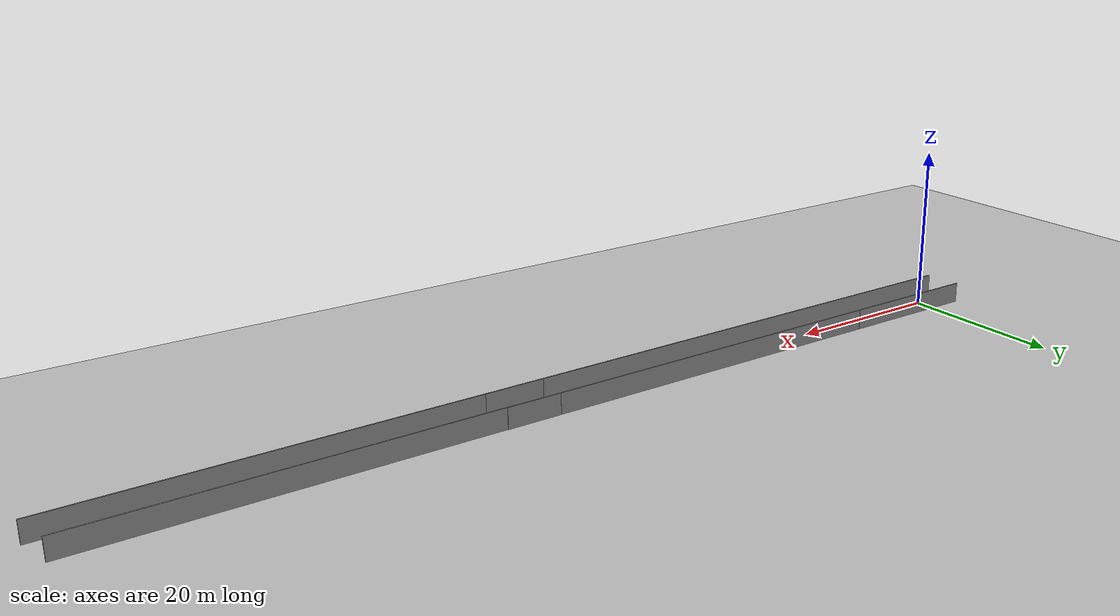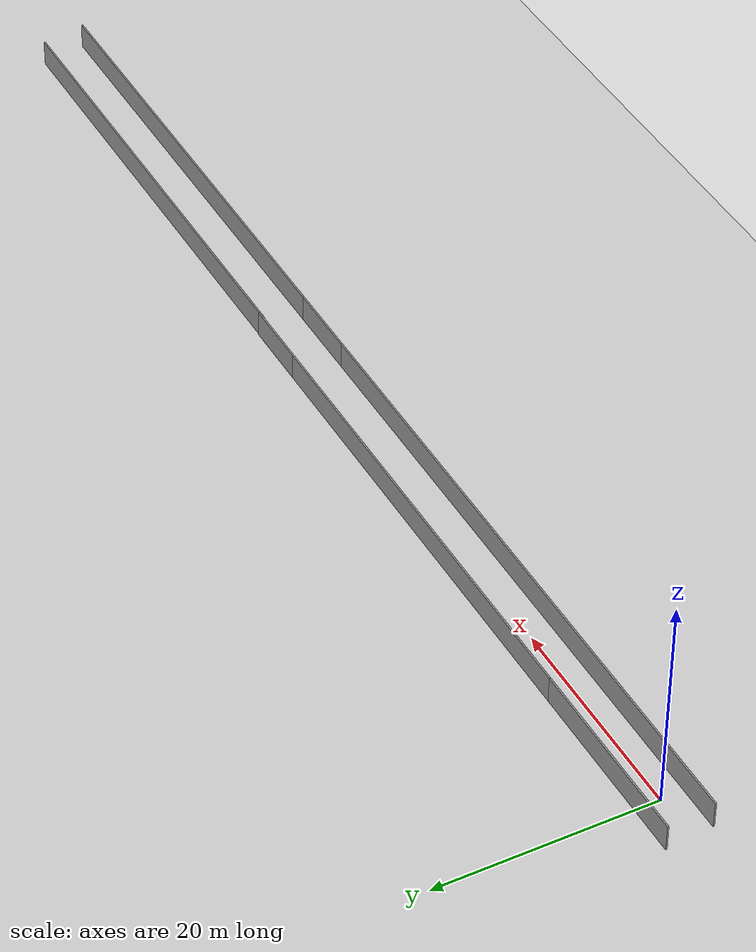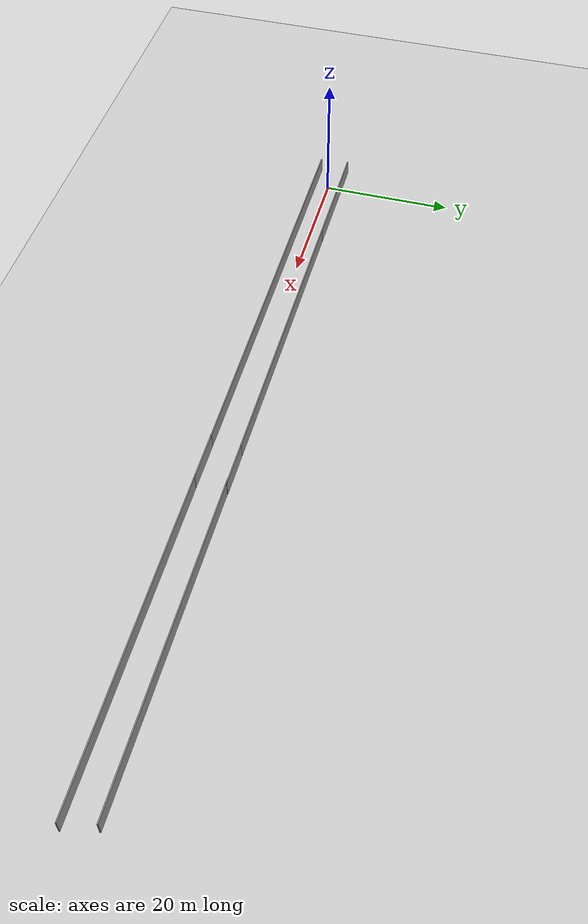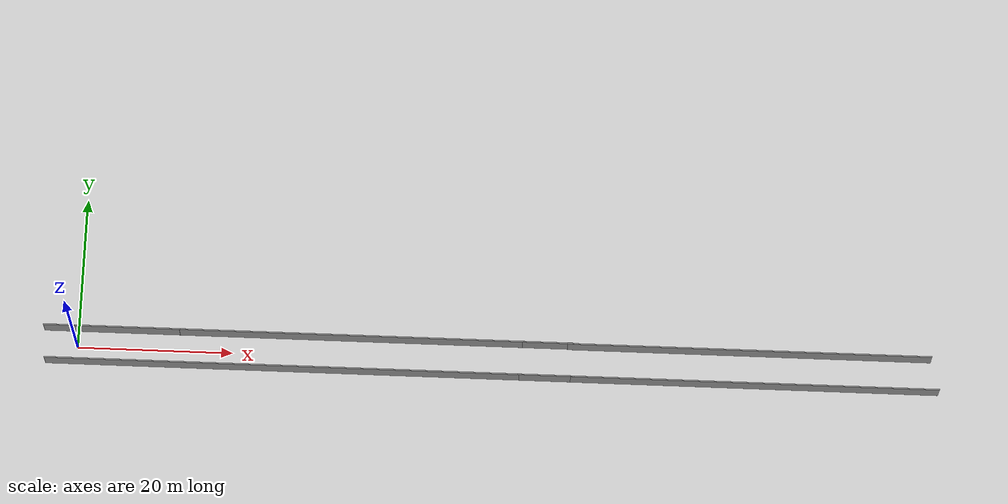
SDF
<sdf version="1.7">
 <world name="default">
  <light name="sun" type="directional">
   <pose>0 0 10 0 -0 0</pose>
   <diffuse>0.8 0.8 0.8 1</diffuse>
   <specular>0.2 0.2 0.2 1</specular>
   <attenuation>
    <range>1000</range>
    <constant>0.9</constant>
    <linear>0.01</linear>
    <quadratic>0.001</quadratic>
   </attenuation>
   <direction>-0.5 0.1 -0.9</direction>
   <spot><inner_angle>0</inner_angle><outer_angle>0</outer_angle><falloff>0</falloff></spot>
  </light>
  <model name="ground_plane">
   <static>1</static>
   <link name="link">
    <collision name="collision">
     <geometry><plane><normal>0 0 1</normal><size>100 100</size></plane></geometry>
     <surface>
      <contact><collide_bitmask>65535</collide_bitmask></contact>
      <friction><ode><mu>100</mu><mu2>50</mu2></ode></friction>
     </surface>
    </collision>
    <visual name="visual">
     <cast_shadows>0</cast_shadows>
     <geometry><plane><normal>0 0 1</normal><size>100 100</size></plane></geometry>
     <material>
      <script><uri>file://media/materials/scripts/gazebo.material</uri><name>Gazebo/Grey</name></script>
     </material>
    </visual>
   </link>
  </model>
  <gravity>0 0 -9.8</gravity>
  <magnetic_field>6e-06 2.3e-05 -4.2e-05</magnetic_field>
  <atmosphere type="adiabatic"/>
  <physics type="ode">
   <max_step_size>0.001</max_step_size>
   <real_time_factor>1</real_time_factor>
   <real_time_update_rate>1000</real_time_update_rate>
  </physics>
  <scene><ambient>0.4 0.4 0.4 1</ambient><background>0.7 0.7 0.7 1</background><shadows>1</shadows></scene>
  <spherical_coordinates>
   <surface_model>EARTH_WGS84</surface_model>
   <latitude_deg>0</latitude_deg>
   <longitude_deg>0</longitude_deg>
   <elevation>0</elevation>
   <heading_deg>0</heading_deg>
  </spherical_coordinates>
  <model name="tunnel">
   <pose>53.3986 0.105549 -0 0 0 -1.57</pose>
   <link name="Wall_1">
    <collision name="Wall_1_Collision">
     <geometry><box><size>44.5 0.15 2.5</size></box></geometry>
     <pose>0 0 1.25 0 -0 0</pose>
    </collision>
    <visual name="Wall_1_Visual">
     <pose>0 0 1.25 0 -0 0</pose>
     <geometry><box><size>44.5 0.15 2.5</size></box></geometry>
     <material>
      <script><uri>file://media/materials/scripts/gazebo.material</uri><name>Gazebo/Grey</name></script>
      <ambient>1 1 1 1</ambient>
     </material>
     <meta><layer>0</layer></meta>
    </visual>
    <pose>-2.20564 -18.0387 0 0 -0 1.5708</pose>
   </link>
   <link name="Wall_13">
    <collision name="Wall_13_Collision">
     <geometry><box><size>61.25 0.15 2.5</size></box></geometry>
     <pose>0 0 1.25 0 -0 0</pose>
    </collision>
    <visual name="Wall_13_Visual">
     <pose>0 0 1.25 0 -0 0</pose>
     <geometry><box><size>61.25 0.15 2.5</size></box></geometry>
     <material>
      <script><uri>file://media/materials/scripts/gazebo.material</uri><name>Gazebo/Grey</name></script>
      <ambient>1 1 1 1</ambient>
     </material>
     <meta><layer>0</layer></meta>
    </visual>
    <pose>2.20241 -26.8761 0 0 -0 -1.5708</pose>
   </link>
   <link name="Wall_16">
    <collision name="Wall_16_Collision">
     <geometry><box><size>7.25 0.15 2.5</size></box></geometry>
     <pose>0 0 1.25 0 -0 0</pose>
    </collision>
    <visual name="Wall_16_Visual">
     <pose>0 0 1.25 0 -0 0</pose>
     <geometry><box><size>7.25 0.15 2.5</size></box></geometry>
     <material>
      <script><uri>file://media/materials/scripts/gazebo.material</uri><name>Gazebo/Grey</name></script>
      <ambient>1 1 1 1</ambient>
     </material>
     <meta><layer>0</layer></meta>
    </visual>
    <pose>2.20241 7.22386 0 0 -0 1.5708</pose>
   </link>
   <link name="Wall_18">
    <collision name="Wall_18_Collision">
     <geometry><box><size>6.75 0.15 2.5</size></box></geometry>
     <pose>0 0 1.25 0 -0 0</pose>
    </collision>
    <visual name="Wall_18_Visual">
     <pose>0 0 1.25 0 -0 0</pose>
     <geometry><box><size>6.75 0.15 2.5</size></box></geometry>
     <material>
      <script><uri>file://media/materials/scripts/gazebo.material</uri><name>Gazebo/Grey</name></script>
      <ambient>1 1 1 1</ambient>
     </material>
     <meta><layer>0</layer></meta>
    </visual>
    <pose>-2.20564 7.4363 0 0 -0 1.5708</pose>
   </link>
   <link name="Wall_24">
    <collision name="Wall_24_Collision">
     <geometry><box><size>47.5 0.15 2.5</size></box></geometry>
     <pose>0 0 1.25 0 -0 0</pose>
    </collision>
    <visual name="Wall_24_Visual">
     <pose>0 0 1.25 0 -0 0</pose>
     <geometry><box><size>47.5 0.15 2.5</size></box></geometry>
     <material>
      <script><uri>file://media/materials/scripts/gazebo.material</uri><name>Gazebo/Grey</name></script>
      <ambient>1 1 1 1</ambient>
     </material>
     <meta><layer>0</layer></meta>
    </visual>
    <pose>2.20564 34.1387 0 0 -0 1.5708</pose>
   </link>
   <link name="Wall_37">
    <collision name="Wall_37_Collision">
     <geometry><box><size>47 0.15 2.5</size></box></geometry>
     <pose>0 0 1.25 0 -0 0</pose>
    </collision>
    <visual name="Wall_37_Visual">
     <pose>0 0 1.25 0 -0 0</pose>
     <geometry><box><size>47 0.15 2.5</size></box></geometry>
     <material>
      <script><uri>file://media/materials/scripts/gazebo.material</uri><name>Gazebo/Grey</name></script>
      <ambient>1 1 1 1</ambient>
     </material>
     <meta><layer>0</layer></meta>
    </visual>
    <pose>-2.15324 33.3859 0 0 -0 1.5708</pose>
   </link>
   <link name="Wall_4">
    <collision name="Wall_4_Collision">
     <geometry><box><size>17.75 0.15 2.5</size></box></geometry>
     <pose>0 0 1.25 0 -0 0</pose>
    </collision>
    <visual name="Wall_4_Visual">
     <pose>0 0 1.25 0 -0 0</pose>
     <geometry><box><size>17.75 0.15 2.5</size></box></geometry>
     <material>
      <script><uri>file://media/materials/scripts/gazebo.material</uri><name>Gazebo/Grey</name></script>
      <ambient>1 1 1 1</ambient>
     </material>
     <meta><layer>0</layer></meta>
    </visual>
    <pose>-2.20564 -49.0137 0 0 -0 -1.5708</pose>
   </link>
   <static>1</static>
  </model>
 </world>
</sdf>
